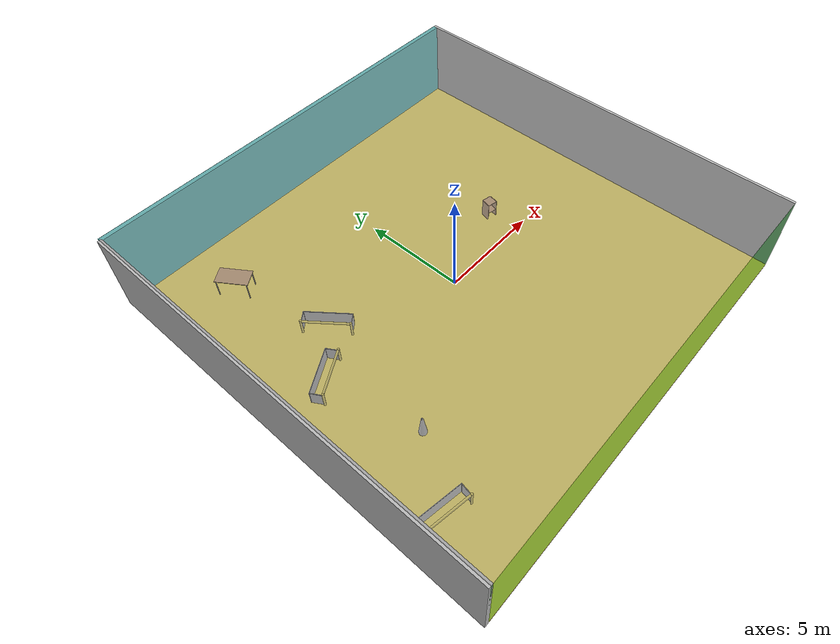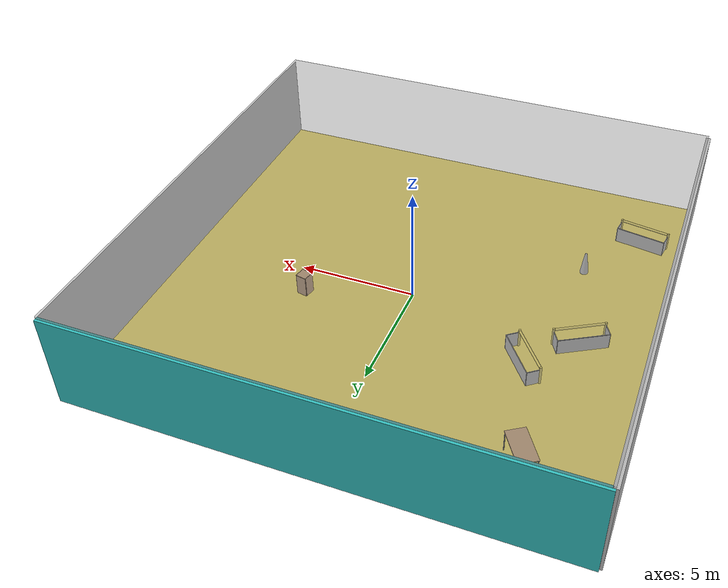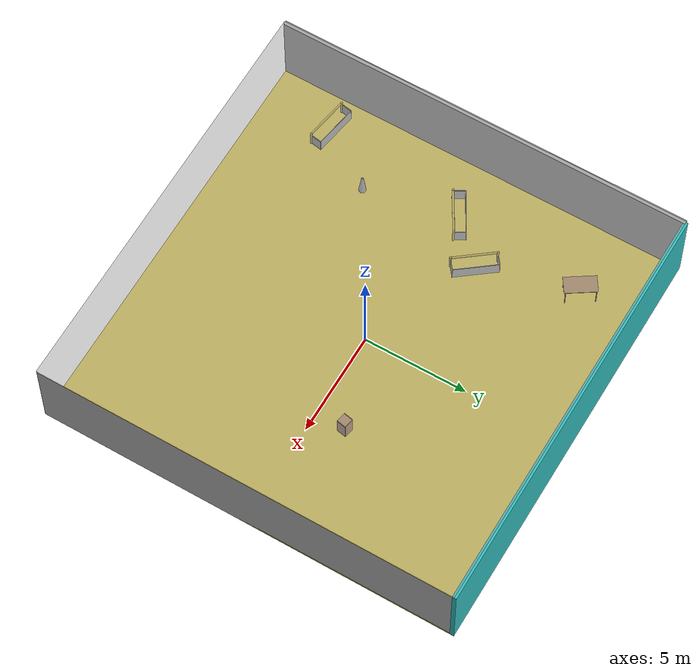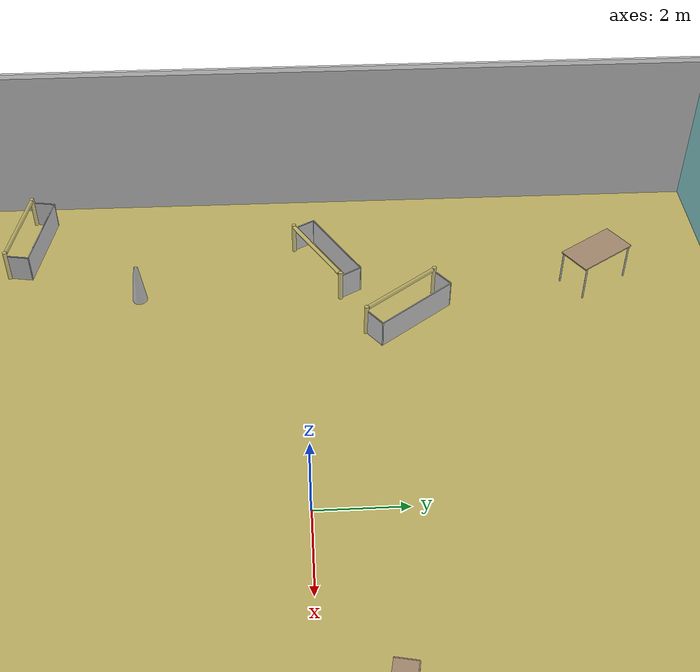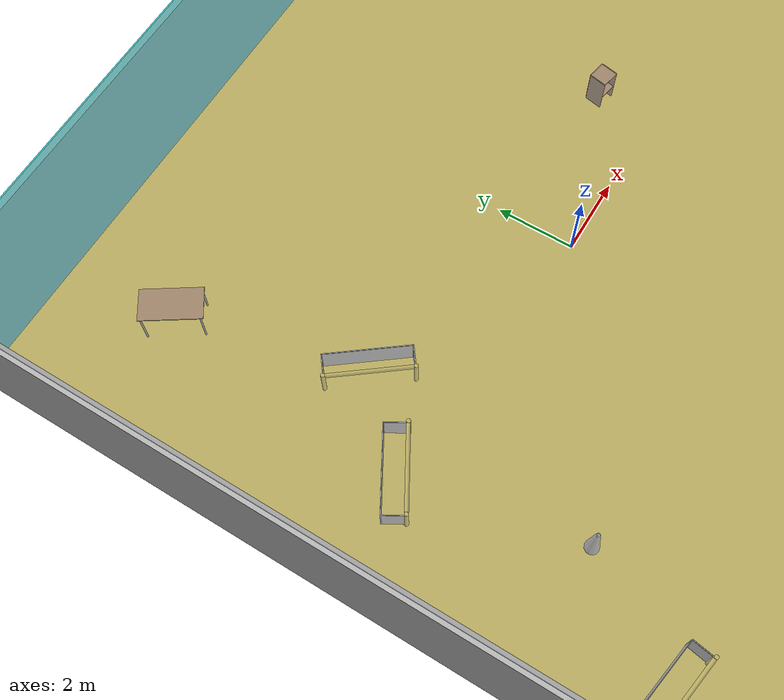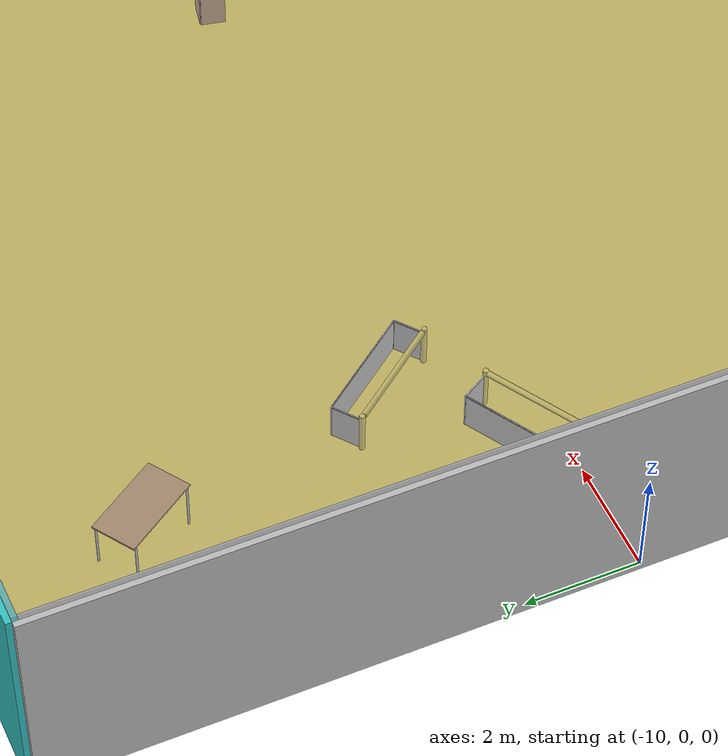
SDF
<sdf version="1.4">
 <world name="default">
  <physics type="ode">
   <max_step_size>0.001</max_step_size>
   <real_time_factor>1</real_time_factor>
   <real_time_update_rate>1000</real_time_update_rate>
   <gravity>0 0 -9.8</gravity>
  </physics>
  <scene><ambient>0.4 0.4 0.4 1</ambient><background>0.7 0.7 0.7 1</background><shadows>1</shadows></scene>
  <model name="Surrounding">
   <static>1</static>
   <link name="Ceiling">
    <collision name="Ceiling_Collision"><geometry><box><size>20 20 0.1</size></box></geometry></collision>
    <visual name="Ceiling_Visual">
     <geometry><box><size>20 20 0.1</size></box></geometry>
     <material>
      <script><uri>file://media/materials/scripts/gazebo.material</uri><name>Gazebo/GreyTransparent</name></script>
     </material>
    </visual>
    <pose>0 0 4.05 0 0 0</pose>
   </link>
   <link name="Wall_South">
    <collision name="Wall_South_Collision">
     <geometry><box><size>20 0 4</size></box></geometry>
     <pose>0 0 2 0 -0 0</pose>
    </collision>
    <visual name="Wall_South_Visual">
     <pose>0 0 2 0 -0 0</pose>
     <geometry><box><size>20 0 4</size></box></geometry>
     <material>
      <script><uri>file://media/materials/scripts/gazebo.material</uri><name>Gazebo/GreenTransparent</name></script>
     </material>
    </visual>
    <velocity_decay><linear>0</linear><angular>0</angular></velocity_decay>
    <pose>0 -10 0 0 -0 0</pose>
   </link>
   <link name="Wall_East">
    <collision name="Wall_21_Collision">
     <geometry><box><size>20 0 4</size></box></geometry>
     <pose>0 0 2 0 -0 0</pose>
    </collision>
    <visual name="Wall_21_Visual">
     <pose>0 0 2 0 -0 0</pose>
     <geometry><box><size>20 0 4</size></box></geometry>
     <material>
      <script><uri>file://media/materials/scripts/gazebo.material</uri><name>Gazebo/JointAnchor</name></script>
     </material>
    </visual>
    <velocity_decay><linear>0</linear><angular>0</angular></velocity_decay>
    <pose>10 0 0 0 -0 1.5708</pose>
   </link>
   <link name="Wall_North">
    <collision name="Wall_22_Collision">
     <geometry><box><size>20 0.2 4</size></box></geometry>
     <pose>0 0 2 0 -0 0</pose>
    </collision>
    <visual name="Wall_22_Visual">
     <pose>0 0 2 0 -0 0</pose>
     <geometry><box><size>20 0.2 4</size></box></geometry>
     <material>
      <script>
       <uri>file://media/materials/scripts/gazebo.material</uri>
       <name>Gazebo/TurquoiseGlowOutline</name>
      </script>
     </material>
    </visual>
    <velocity_decay><linear>0</linear><angular>0</angular></velocity_decay>
    <pose>0 10 0 0 -0 0</pose>
   </link>
   <link name="Wall_West">
    <collision name="Wall_23_Collision">
     <geometry><box><size>20 0.2 4</size></box></geometry>
     <pose>0 0 2 0 -0 0</pose>
    </collision>
    <visual name="Wall_23_Visual">
     <pose>0 0 2 0 -0 0</pose>
     <geometry><box><size>20 0.2 4</size></box></geometry>
     <material>
      <script><uri>file://media/materials/scripts/gazebo.material</uri><name>Gazebo/JointAnchor</name></script>
     </material>
    </visual>
    <velocity_decay><linear>0</linear><angular>0</angular></velocity_decay>
    <pose>-10 0 0 0 0 -1.5708</pose>
   </link>
   <link name="Ground_link">
    <collision name="collision">
     <pose>0 0 .05 0 -0 0</pose>
     <geometry><box><size>20 20 0.1</size></box></geometry>
    </collision>
    <visual name="visual">
     <pose>0 0 .05 0 -0 0</pose>
     <geometry><box><size>20 20 0.1</size></box></geometry>
     <material>
      <script><uri>file://media/materials/scripts/gazebo.material</uri><name>Gazebo/ZincYellow</name></script>
     </material>
    </visual>
   </link>
   <static>1</static>
  </model>
  <spherical_coordinates>
   <surface_model>EARTH_WGS84</surface_model>
   <latitude_deg>0</latitude_deg>
   <longitude_deg>0</longitude_deg>
   <elevation>0</elevation>
   <heading_deg>0</heading_deg>
  </spherical_coordinates>
  <light name="lightball_0" type="diffuse">
   <diffuse>0.8 0.8 0.8 1</diffuse>
   <specular>0.2 0.2 0.2 1</specular>
   <attenuation>
    <range>100</range>
    <constant>0.7</constant>
    <linear>0.01</linear>
    <quadratic>0.001</quadratic>
   </attenuation>
   <direction>-0.5 0.1 -0.9</direction>
   <pose>3.15727534577 1.07553545303 0.616628888104 0 0 0</pose>
  </light>
  <light name="lightball_1" type="diffuse">
   <diffuse>0.8 0.8 0.8 1</diffuse>
   <specular>0.2 0.2 0.2 1</specular>
   <attenuation>
    <range>100</range>
    <constant>0.7</constant>
    <linear>0.01</linear>
    <quadratic>0.001</quadratic>
   </attenuation>
   <direction>-0.5 0.1 -0.9</direction>
   <pose>-8.42039145154 -3.23231372901 1.78885178117 0 0 0</pose>
  </light>
  <light name="lightball_2" type="diffuse">
   <diffuse>0.8 0.8 0.8 1</diffuse>
   <specular>0.2 0.2 0.2 1</specular>
   <attenuation>
    <range>100</range>
    <constant>0.7</constant>
    <linear>0.01</linear>
    <quadratic>0.001</quadratic>
   </attenuation>
   <direction>-0.5 0.1 -0.9</direction>
   <pose>0.675118722007 9.00564105577 2.99613320723 0 0 0</pose>
  </light>
  <light name="lightball_3" type="diffuse">
   <diffuse>0.8 0.8 0.8 1</diffuse>
   <specular>0.2 0.2 0.2 1</specular>
   <attenuation>
    <range>100</range>
    <constant>0.7</constant>
    <linear>0.01</linear>
    <quadratic>0.001</quadratic>
   </attenuation>
   <direction>-0.5 0.1 -0.9</direction>
   <pose>-4.44484306627 -3.27460658748 3.80000199831 0 0 0</pose>
  </light>
  <light name="lightball_4" type="diffuse">
   <diffuse>0.8 0.8 0.8 1</diffuse>
   <specular>0.2 0.2 0.2 1</specular>
   <attenuation>
    <range>100</range>
    <constant>0.7</constant>
    <linear>0.01</linear>
    <quadratic>0.001</quadratic>
   </attenuation>
   <direction>-0.5 0.1 -0.9</direction>
   <pose>-3.2081151708 4.9479988652 1.14390559904 0 0 0</pose>
  </light>
  <light name="lightball_5" type="diffuse">
   <diffuse>0.8 0.8 0.8 1</diffuse>
   <specular>0.2 0.2 0.2 1</specular>
   <attenuation>
    <range>100</range>
    <constant>0.7</constant>
    <linear>0.01</linear>
    <quadratic>0.001</quadratic>
   </attenuation>
   <direction>-0.5 0.1 -0.9</direction>
   <pose>-8.47589500247 -9.46722957231 2.99375679656 0 0 0</pose>
  </light>
  <light name="lightball_6" type="diffuse">
   <diffuse>0.8 0.8 0.8 1</diffuse>
   <specular>0.2 0.2 0.2 1</specular>
   <attenuation>
    <range>100</range>
    <constant>0.7</constant>
    <linear>0.01</linear>
    <quadratic>0.001</quadratic>
   </attenuation>
   <direction>-0.5 0.1 -0.9</direction>
   <pose>1.7952256292 -4.57178283295 3.38157238412 0 0 0</pose>
  </light>
  <light name="lightball_7" type="diffuse">
   <diffuse>0.8 0.8 0.8 1</diffuse>
   <specular>0.2 0.2 0.2 1</specular>
   <attenuation>
    <range>100</range>
    <constant>0.7</constant>
    <linear>0.01</linear>
    <quadratic>0.001</quadratic>
   </attenuation>
   <direction>-0.5 0.1 -0.9</direction>
   <pose>-6.21000343417 -3.07882911936 1.25108917887 0 0 0</pose>
  </light>
  <light name="lightball_8" type="diffuse">
   <diffuse>0.8 0.8 0.8 1</diffuse>
   <specular>0.2 0.2 0.2 1</specular>
   <attenuation>
    <range>100</range>
    <constant>0.7</constant>
    <linear>0.01</linear>
    <quadratic>0.001</quadratic>
   </attenuation>
   <direction>-0.5 0.1 -0.9</direction>
   <pose>-9.63938187387 -5.05683239531 2.23851951043 0 0 0</pose>
  </light>
  <light name="lightball_9" type="diffuse">
   <diffuse>0.8 0.8 0.8 1</diffuse>
   <specular>0.2 0.2 0.2 1</specular>
   <attenuation>
    <range>100</range>
    <constant>0.7</constant>
    <linear>0.01</linear>
    <quadratic>0.001</quadratic>
   </attenuation>
   <direction>-0.5 0.1 -0.9</direction>
   <pose>1.6155463358 -3.29652642451 2.15956088394 0 0 0</pose>
  </light>
  <include>
   <uri>model://robocup_3Dsim_goal</uri>
   <pose>-8.28130850912 -6.88155011835 0 0 0 1.40581424119</pose>
  </include>
  <include>
   <uri>model://construction_cone</uri>
   <pose>-6.32223703019 -3.86560619132 0 0 0 0.12442957789</pose>
  </include>
  <include>
   <uri>model://robocup_3Dsim_goal</uri>
   <pose>-7.05757064161 0.33862136731 0 0 0 2.09700097906</pose>
  </include>
  <include><uri>model://table</uri><pose>-6.58073615284 6.94587424325 0 0 0 2.15371566366</pose></include>
  <include>
   <uri>model://robocup_3Dsim_goal</uri>
   <pose>-5.58370880579 2.23148504427 0 0 0 0.654924025088</pose>
  </include>
  <include><uri>model://cabinet</uri><pose>4.20435635637 1.45835380726 0 0 0 1.37557604412</pose></include>
 </world>
</sdf>

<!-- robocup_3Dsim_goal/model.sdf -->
<sdf version="1.5">
  <model name="robocup_3d_goal">
    <static>true</static>
    <link name="left_post">
      <pose>0 1.05 0.45 0 0 0</pose>
      <collision name="collision">
        <geometry>
          <cylinder>
            <radius>0.05</radius>
            <length>0.9</length>
          </cylinder>
        </geometry>
      </collision>
      <visual name="visual">
        <geometry>
          <cylinder>
            <radius>0.05</radius>
            <length>0.9</length>
          </cylinder>
        </geometry>
        <material>
          <script>
            <uri>file://media/materials/scripts/gazebo.material</uri>
            <name>Gazebo/ZincYellow</name>
          </script>
        </material>
      </visual>
    </link>
    <link name="left_support_horiz_lower">
      <pose>0.30 1.05 0.01 0 0 0</pose>
      <collision name="collision">
        <geometry>
          <box>
            <size>0.50 0.02 0.02</size>
          </box>
        </geometry>
      </collision>
      <visual name="visual">
        <geometry>
          <box>
            <size>0.50 0.02 0.02</size>
          </box>
        </geometry>
        <material>
          <script>
            <uri>file://media/materials/scripts/gazebo.material</uri>
            <name>Gazebo/White</name>
          </script>
        </material>
      </visual>
    </link>
    <link name="left_support_horiz_upper">
      <pose>0.30 1.05 0.79 0 0 0</pose>
      <collision name="collision">
        <geometry>
          <box>
            <size>0.50 0.02 0.02</size>
          </box>
        </geometry>
      </collision>
      <visual name="visual">
        <geometry>
          <box>
            <size>0.50 0.02 0.02</size>
          </box>
        </geometry>
        <material>
          <script>
            <uri>file://media/materials/scripts/gazebo.material</uri>
            <name>Gazebo/White</name>
          </script>
        </material>
      </visual>
    </link>
    <link name="left_support_vertical">
      <pose>0.56 1.05 0.4 0 1.5708 0</pose>
      <collision name="collision">
        <geometry>
          <box>
            <size>0.80 0.02 0.02</size>
          </box>
        </geometry>
      </collision>
      <visual name="visual">
        <geometry>
          <box>
            <size>0.80 0.02 0.02</size>
          </box>
        </geometry>
        <material>
          <script>
            <uri>file://media/materials/scripts/gazebo.material</uri>
            <name>Gazebo/White</name>
          </script>
        </material>
      </visual>
    </link>
    <link name="right_support_horiz_lower">
      <pose>0.30 -1.05 0.01 0 0 0</pose>
      <collision name="collision">
        <geometry>
          <box>
            <size>0.50 0.02 0.02</size>
          </box>
        </geometry>
      </collision>
      <visual name="visual">
        <geometry>
          <box>
            <size>0.50 0.02 0.02</size>
          </box>
        </geometry>
        <material>
          <script>
            <uri>file://media/materials/scripts/gazebo.material</uri>
            <name>Gazebo/White</name>
          </script>
        </material>
      </visual>
    </link>
    <link name="right_support_horiz_upper">
      <pose>0.30 -1.05 0.79 0 0 0</pose>
      <collision name="collision">
        <geometry>
          <box>
            <size>0.50 0.02 0.02</size>
          </box>
        </geometry>
      </collision>
      <visual name="visual">
        <geometry>
          <box>
            <size>0.50 0.02 0.02</size>
          </box>
        </geometry>
        <material>
          <script>
            <uri>file://media/materials/scripts/gazebo.material</uri>
            <name>Gazebo/White</name>
          </script>
        </material>
      </visual>
    </link>
    <link name="right_support_vertical">
      <pose>0.56 -1.05 0.4 0 1.5708 0</pose>
      <collision name="collision">
        <geometry>
          <box>
            <size>0.80 0.02 0.02</size>
          </box>
        </geometry>
      </collision>
      <visual name="visual">
        <geometry>
          <box>
            <size>0.80 0.02 0.02</size>
          </box>
        </geometry>
        <material>
          <script>
            <uri>file://media/materials/scripts/gazebo.material</uri>
            <name>Gazebo/White</name>
          </script>
        </material>
      </visual>
    </link>
    <link name="center_support_horiz_lower">
      <pose>0.56 0 0.01 0 1.5708 0</pose>
      <collision name="collision">
        <geometry>
          <box>
            <size>0.02 2.08 0.02</size>
          </box>
        </geometry>
      </collision>
      <visual name="visual">
        <geometry>
          <box>
            <size>0.02 2.08 0.02</size>
          </box>
        </geometry>
        <material>
          <script>
            <uri>file://media/materials/scripts/gazebo.material</uri>
            <name>Gazebo/White</name>
          </script>
        </material>
      </visual>
    </link>
    <link name="center_support_horiz_upper">
      <pose>0.56 0 0.79 0 1.5708 0</pose>
      <collision name="collision">
        <geometry>
          <box>
            <size>0.02 2.08 0.02</size>
          </box>
        </geometry>
      </collision>
      <visual name="visual">
        <geometry>
          <box>
            <size>0.02 2.08 0.02</size>
          </box>
        </geometry>
        <material>
          <script>
            <uri>file://media/materials/scripts/gazebo.material</uri>
            <name>Gazebo/White</name>
          </script>
        </material>
      </visual>
    </link>
    <link name="right_post">
      <pose>0 -1.05 0.45 0 0 0</pose>
      <collision name="collision">
        <geometry>
          <cylinder>
            <radius>0.05</radius>
            <length>0.9</length>
          </cylinder>
        </geometry>
      </collision>
      <visual name="visual">
        <geometry>
          <cylinder>
            <radius>0.05</radius>
            <length>0.9</length>
          </cylinder>
        </geometry>
        <material>
          <script>
            <uri>file://media/materials/scripts/gazebo.material</uri>
            <name>Gazebo/ZincYellow</name>
          </script>
        </material>
      </visual>
    </link>
    <link name="crossbar">
      <pose>0 0 0.85 1.57 1.57 0</pose>
      <collision name="collision">
        <geometry>
          <cylinder>
            <radius>0.05</radius>
            <length>2.0</length>
          </cylinder>
        </geometry>
      </collision>
      <visual name="visual">
        <geometry>
          <cylinder>
            <radius>0.05</radius>
            <length>2.0</length>
          </cylinder>
        </geometry>
        <material>
          <script>
            <uri>file://media/materials/scripts/gazebo.material</uri>
            <name>Gazebo/ZincYellow</name>
          </script>
        </material>
      </visual>
    </link>
    <link name="center_net">
      <pose>0.56 0 0.40 0 0 0</pose>
      <collision name="collision">
        <geometry>
          <box>
            <size>0.01 2.1 0.80</size>
          </box>
        </geometry>
      </collision>
      <visual name="visual">
        <geometry>
          <box>
            <size>0.01 2.1 0.80</size>
          </box>
        </geometry>
        <material>
          <script>
            <uri>model://../model_source/models/robocup09_spl_field/materials/scripts/</uri>
            <uri>model://../model_source/models/robocup09_spl_field/materials/textures/</uri>
            <name>RoboCup/Net</name>
          </script>
        </material>
      </visual>
    </link>
    <link name="left_net">
      <pose>0.30 1.05 0.40 0 0 0</pose>
      <collision name="collision">
        <geometry>
          <box>
            <size>0.50 0.01 0.76</size>
          </box>
        </geometry>
      </collision>
      <visual name="visual">
        <geometry>
          <box>
            <size>0.50 0.01 0.76</size>
          </box>
        </geometry>
        <material>
          <script>
            <uri>model://../model_source/models/robocup09_spl_field/materials/scripts/</uri>
            <uri>model://../model_source/models/robocup09_spl_field/materials/textures/</uri>
            <name>RoboCup/Net</name>
          </script>
        </material>
      </visual>
    </link>
    <link name="right_net">
      <pose>0.30 -1.05 0.40 0 0 0</pose>
      <collision name="collision">
        <geometry>
          <box>
            <size>0.50 0.01 0.76</size>
          </box>
        </geometry>
      </collision>
      <visual name="visual">
        <geometry>
          <box>
            <size>0.50 0.01 0.76</size>
          </box>
        </geometry>
        <material>
          <script>
            <uri>model://../model_source/models/robocup09_spl_field/materials/scripts/</uri>
            <uri>model://../model_source/models/robocup09_spl_field/materials/textures/</uri>
            <name>RoboCup/Net</name>
          </script>
        </material>
      </visual>
    </link>
  </model>
</sdf>

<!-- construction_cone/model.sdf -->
<sdf version="1.5">
  <model name="Construction Cone">
    <link name="link">
      <collision name="collision">
        <geometry>
          <mesh>
            <scale>10 10 10</scale>
            <uri>file://isr-testbed/construction_cone/meshes/construction_cone.dae</uri>
          </mesh>
        </geometry>
      </collision>
      <visual name="visual">
        <geometry>
          <mesh>
            <scale>10 10 10</scale>
            <uri>file://isr-testbed/construction_cone/meshes/construction_cone.dae</uri>
          </mesh>
        </geometry>
      </visual>
    </link>
  </model>
</sdf>

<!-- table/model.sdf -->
<sdf version="1.5">
  <model name="table">
    <static>true</static>
    <link name="link">
      <collision name="surface">
        <pose>0 0 1.0 0 0 0</pose>
        <geometry>
          <box>
            <size>1.5 0.8 0.03</size>
          </box>
        </geometry>
        <surface>
          <friction>
            <ode>
              <mu>0.6</mu>
              <mu2>0.6</mu2>
            </ode>
          </friction>
        </surface>
      </collision>
      <visual name="visual1">
        <pose>0 0 1.0 0 0 0</pose>
        <geometry>
          <box>
            <size>1.5 0.8 0.03</size>
          </box>
        </geometry>
        <material>
          <script>
            <uri>model://media/materials/scripts/gazebo.material</uri>
            <name>Gazebo/Wood</name>
          </script>
        </material>
      </visual>
      <collision name="front_left_leg">
        <pose>0.68 0.38 0.5 0 0 0</pose>
        <geometry>
          <cylinder>
            <radius>0.02</radius>
            <length>1.0</length>
          </cylinder>
        </geometry>
      </collision>
      <visual name="front_left_leg">
        <pose>0.68 0.38 0.5 0 0 0</pose>
        <geometry>
          <cylinder>
            <radius>0.02</radius>
            <length>1.0</length>
          </cylinder>
        </geometry>
        <material>
          <script>
            <uri>model://media/materials/scripts/gazebo.material</uri>
            <name>Gazebo/Grey</name>
          </script>
        </material>
      </visual>
      <collision name="front_right_leg">
        <pose>0.68 -0.38 0.5 0 0 0</pose>
        <geometry>
          <cylinder>
            <radius>0.02</radius>
            <length>1.0</length>
          </cylinder>
        </geometry>
      </collision>
      <visual name="front_right_leg">
        <pose>0.68 -0.38 0.5 0 0 0</pose>
        <geometry>
          <cylinder>
            <radius>0.02</radius>
            <length>1.0</length>
          </cylinder>
        </geometry>
        <material>
          <script>
            <uri>model://media/materials/scripts/gazebo.material</uri>
            <name>Gazebo/Grey</name>
          </script>
        </material>
      </visual>
      <collision name="back_right_leg">
        <pose>-0.68 -0.38 0.5 0 0 0</pose>
        <geometry>
          <cylinder>
            <radius>0.02</radius>
            <length>1.0</length>
          </cylinder>
        </geometry>
      </collision>
      <visual name="back_right_leg">
        <pose>-0.68 -0.38 0.5 0 0 0</pose>
        <geometry>
          <cylinder>
            <radius>0.02</radius>
            <length>1.0</length>
          </cylinder>
        </geometry>
        <material>
          <script>
            <uri>model://media/materials/scripts/gazebo.material</uri>
            <name>Gazebo/Grey</name>
          </script>
        </material>
      </visual>
      <collision name="back_left_leg">
        <pose>-0.68 0.38 0.5 0 0 0</pose>
        <geometry>
          <cylinder>
            <radius>0.02</radius>
            <length>1.0</length>
          </cylinder>
        </geometry>
      </collision>
      <visual name="back_left_leg">
        <pose>-0.68 0.38 0.5 0 0 0</pose>
        <geometry>
          <cylinder>
            <radius>0.02</radius>
            <length>1.0</length>
          </cylinder>
        </geometry>
        <material>
          <script>
            <uri>model://media/materials/scripts/gazebo.material</uri>
            <name>Gazebo/Grey</name>
          </script>
        </material>
      </visual>
    </link>
  </model>
</sdf>

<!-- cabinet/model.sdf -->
<sdf version="1.5">
  <model name="cabinet">
    <static>true</static>
    <link name="cabinet_bottom_plate">
      <inertial>
        <pose>0 0 -1 0 0 0</pose>
        <inertia>
          <ixx>2.050000</ixx>
          <ixy>0</ixy>
          <ixz>0</ixz>
          <iyy>2.050000</iyy>
          <iyz>0</iyz>
          <izz>2.050000</izz>
        </inertia>
        <mass>25.000000</mass>
      </inertial>
      <collision name="cabinet_bottom_plate_geom">
        <pose>0 0 0.010000 0 0 0</pose>
        <geometry>
          <box>
            <size>0.450000 0.450000 0.020000</size>
          </box>
        </geometry>
      </collision>
      <visual name="cabinet_bottom_plate_geom_visual">
        <pose>0 0 0.010000 0 0 0</pose>
        <geometry>
          <box>
            <size>0.450000 0.450000 0.020000</size>
          </box>
        </geometry>
        <material>
          <script>
            <uri>model://media/materials/scripts/gazebo.material</uri>
            <name>Gazebo/Wood</name>
          </script>
        </material>
      </visual>
      <collision name="cabinet_bottom_plate_geom_cabinet_back_plate">
        <pose>0.235000 0 0.510000 0 0 0</pose>
        <geometry>
          <box>
            <size>0.020000 0.450000 1.020000</size>
          </box>
        </geometry>
      </collision>
      <visual name="cabinet_bottom_plate_geom_cabinet_back_plate_visual">
        <pose>0.235000 0 0.510000 0 0 0</pose>
        <geometry>
          <box>
            <size>0.020000 0.450000 1.020000</size>
          </box>
        </geometry>
        <material>
          <script>
            <uri>model://media/materials/scripts/gazebo.material</uri>
            <name>Gazebo/Wood</name>
          </script>
        </material>
      </visual>
      <collision name="cabinet_bottom_plate_geom_cabinet_left_plate">
        <pose>0 0.235000 0.510000 0 0 0</pose>
        <geometry>
          <box>
            <size>0.450000 0.020000 1.020000</size>
          </box>
        </geometry>
      </collision>
      <visual name="cabinet_bottom_plate_geom_cabinet_left_plate_visual">
        <pose>0 0.235000 0.510000 0 0 0</pose>
        <geometry>
          <box>
            <size>0.450000 0.020000 1.020000</size>
          </box>
        </geometry>
        <material>
          <script>
            <uri>model://media/materials/scripts/gazebo.material</uri>
            <name>Gazebo/Wood</name>
          </script>
        </material>
      </visual>
      <collision name="cabinet_bottom_plate_geom_cabinet_middle_plate">
        <pose>0 0 0.510000 0 0 0</pose>
        <geometry>
          <box>
            <size>0.450000 0.450000 0.020000</size>
          </box>
        </geometry>
      </collision>
      <visual name="cabinet_bottom_plate_geom_cabinet_middle_plate_visual">
        <pose>0 0 0.510000 0 0 0</pose>
        <geometry>
          <box>
            <size>0.450000 0.450000 0.020000</size>
          </box>
        </geometry>
        <material>
          <script>
            <uri>model://media/materials/scripts/gazebo.material</uri>
            <name>Gazebo/Wood</name>
          </script>
        </material>
      </visual>
      <collision name="cabinet_bottom_plate_geom_cabinet_right_plate">
        <pose>0 -0.235000 0.510000 0 0 0</pose>
        <geometry>
          <box>
            <size>0.450000 0.020000 1.020000</size>
          </box>
        </geometry>
      </collision>
      <visual name="cabinet_bottom_plate_geom_cabinet_right_plate_visual">
        <pose>0 -0.235000 0.510000 0 0 0</pose>
        <geometry>
          <box>
            <size>0.450000 0.020000 1.020000</size>
          </box>
        </geometry>
        <material>
          <script>
            <uri>model://media/materials/scripts/gazebo.material</uri>
            <name>Gazebo/Wood</name>
          </script>
        </material>
      </visual>
      <collision name="cabinet_bottom_plate_geom_cabinet_top_plate">
        <pose>0 0 1.010000 0 0 0</pose>
        <geometry>
          <box>
            <size>0.450000 0.450000 0.020000</size>
          </box>
        </geometry>
      </collision>
      <visual name="cabinet_bottom_plate_geom_cabinet_top_plate_visual">
        <pose>0 0 1.010000 0 0 0</pose>
        <geometry>
          <box>
            <size>0.450000 0.450000 0.020000</size>
          </box>
        </geometry>
        <material>
          <script>
            <uri>model://media/materials/scripts/gazebo.material</uri>
            <name>Gazebo/Wood</name>
          </script>
        </material>
      </visual>
    </link>
  </model>
</sdf>
